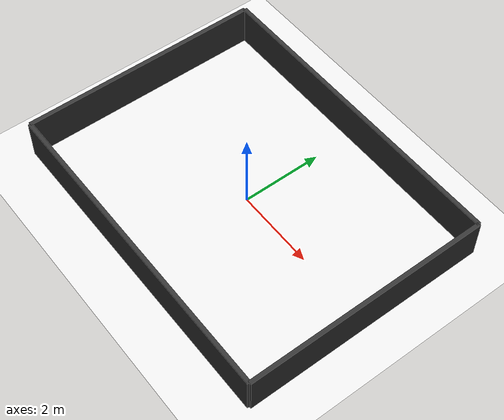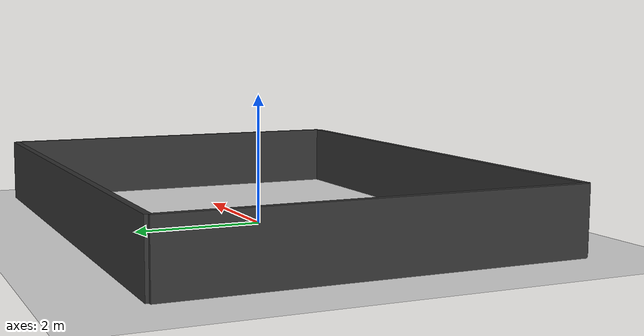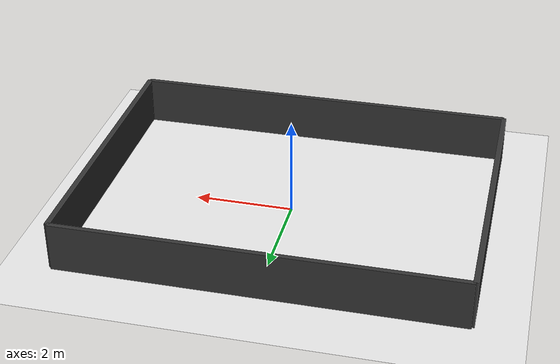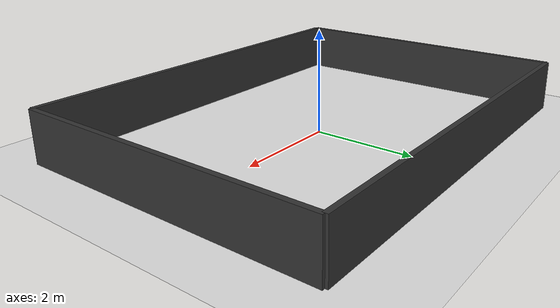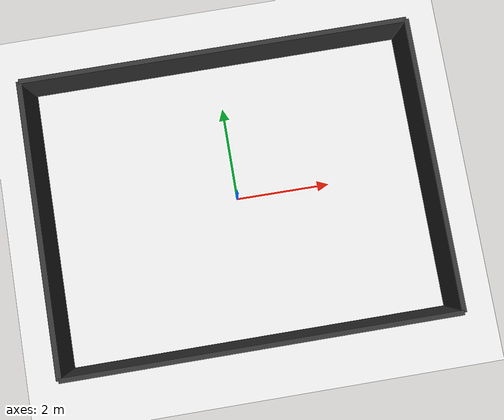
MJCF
<mujoco model="nav_room_open">
  <option timestep="0.01" gravity="0 0 -9.81"/>
  <visual>
    <map znear="0.01" zfar="50"/>
  </visual>

  <worldbody>
    <!-- 地板 -->
    <geom name="floor" type="plane" size="5 5 0.1" rgba="0.9 0.9 0.9 1"/>

    <!-- 内墙：8m x 6m -->
    <geom name="wall_n" type="box" pos="0 3 0.5"  size="4 0.05 0.5" rgba="0.2 0.2 0.2 1" contype="1" conaffinity="1"/>
    <geom name="wall_s" type="box" pos="0 -3 0.5" size="4 0.05 0.5" rgba="0.2 0.2 0.2 1" contype="1" conaffinity="1"/>
    <geom name="wall_e" type="box" pos="4 0 0.5"  size="0.05 3 0.5" rgba="0.2 0.2 0.2 1" contype="1" conaffinity="1"/>
    <geom name="wall_w" type="box" pos="-4 0 0.5" size="0.05 3 0.5" rgba="0.2 0.2 0.2 1" contype="1" conaffinity="1"/>

    <!-- 无障碍物版本 - 用于编队任务 -->
    <!-- 机器人将在运行时动态添加 -->
  </worldbody>
</mujoco>
